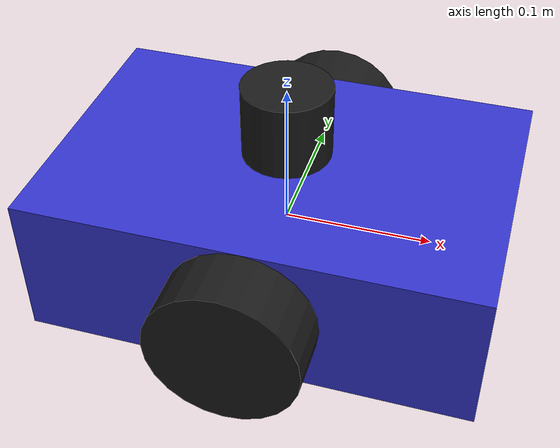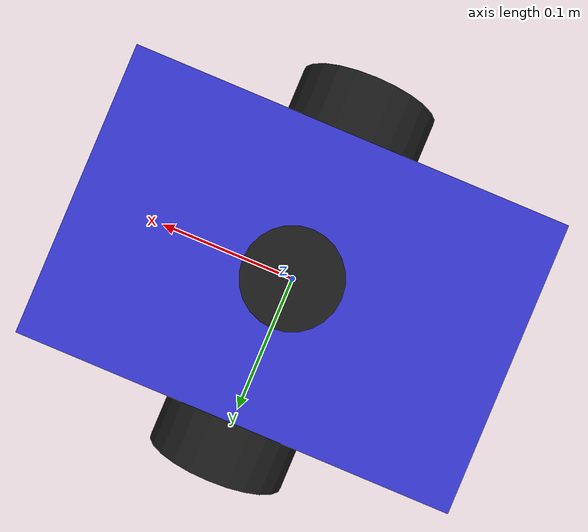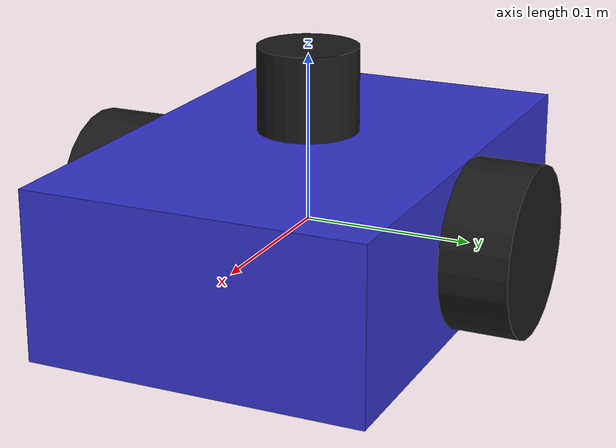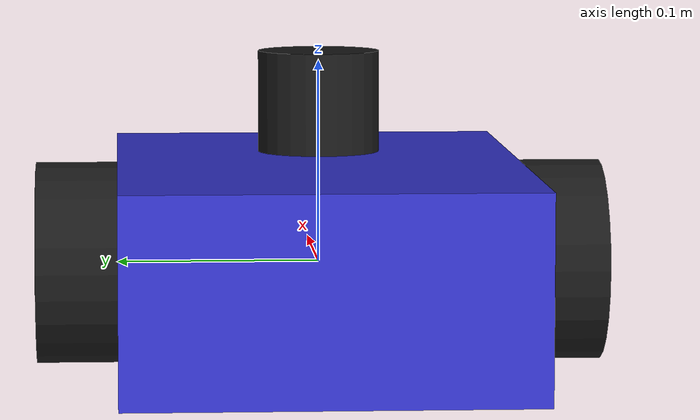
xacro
<?xml version="1.0"?>
<robot name="my_robot" xmlns:xacro="http://www.ros.org/wiki/xacro">

  <link name="base_link">
    <visual>
      <geometry>
        <box size="0.3 0.2 0.1"/>
      </geometry>
      <material name="blue">
        <color rgba="0.2 0.2 0.8 1"/>
      </material>
    </visual>
    <collision>
      <geometry>
        <box size="0.3 0.2 0.1"/>
      </geometry>
    </collision>
    <inertial>
      <mass value="1.0"/>
      <inertia ixx="0.01" ixy="0.0" ixz="0.0" iyy="0.01" iyz="0.0" izz="0.01"/>
    </inertial>
  </link>

  <link name="left_wheel">
    <visual>
      <geometry>
        <cylinder radius="0.05" length="0.04"/>
      </geometry>
      <material name="black">
        <color rgba="0.1 0.1 0.1 1"/>
      </material>
    </visual>
    <collision>
      <geometry>
        <cylinder radius="0.05" length="0.04"/>
      </geometry>
    </collision>
    <inertial>
      <mass value="0.1"/>
      <inertia ixx="0.0001" ixy="0.0" ixz="0.0" iyy="0.0001" iyz="0.0" izz="0.0001"/>
    </inertial>
  </link>

  <joint name="left_wheel_joint" type="continuous">
    <parent link="base_link"/>
    <child link="left_wheel"/>
    <origin xyz="0 0.12 0" rpy="1.5708 0 0"/>
    <axis xyz="0 0 1"/>
  </joint>

  <link name="right_wheel">
    <visual>
      <geometry>
        <cylinder radius="0.05" length="0.04"/>
      </geometry>
      <material name="black">
        <color rgba="0.1 0.1 0.1 1"/>
      </material>
    </visual>
    <collision>
      <geometry>
        <cylinder radius="0.05" length="0.04"/>
      </geometry>
    </collision>
    <inertial>
      <mass value="0.1"/>
      <inertia ixx="0.0001" ixy="0.0" ixz="0.0" iyy="0.0001" iyz="0.0" izz="0.0001"/>
    </inertial>
  </link>

  <joint name="right_wheel_joint" type="continuous">
    <parent link="base_link"/>
    <child link="right_wheel"/>
    <origin xyz="0 -0.12 0" rpy="1.5708 0 0"/>
    <axis xyz="0 0 1"/>
  </joint>

  <link name="lidar_link">
    <visual>
      <geometry>
        <cylinder radius="0.03" length="0.05"/>
      </geometry>
      <material name="black"/>
    </visual>
    <collision>
      <geometry>
        <cylinder radius="0.03" length="0.05"/>
      </geometry>
    </collision>
    <inertial>
      <mass value="0.05"/>
      <inertia ixx="0.00001" ixy="0.0" ixz="0.0" iyy="0.00001" iyz="0.0" izz="0.00001"/>
    </inertial>
  </link>

  <joint name="lidar_joint" type="fixed">
    <parent link="base_link"/>
    <child link="lidar_link"/>
    <origin xyz="0 0 0.08" rpy="0 0 0"/>
  </joint>

  <gazebo>
    <plugin filename="gz-sim-diff-drive-system" name="gz::sim::systems::DiffDrive">
      <left_joint>left_wheel_joint</left_joint>
      <right_joint>right_wheel_joint</right_joint>
      <wheel_separation>0.24</wheel_separation>
      <wheel_radius>0.05</wheel_radius>
      <topic>cmd_vel</topic>
    </plugin>
  </gazebo>

  <gazebo reference="lidar_link">
    <sensor name="lidar" type="gpu_lidar">
      <update_rate>10</update_rate>
      <topic>scan</topic>
      <lidar>
        <scan>
          <horizontal>
            <samples>360</samples>
            <resolution>1</resolution>
            <min_angle>-3.14159</min_angle>
            <max_angle>3.14159</max_angle>
          </horizontal>
        </scan>
        <range>
          <min>0.1</min>
          <max>10.0</max>
        </range>
      </lidar>
      <always_on>true</always_on>
      <visualize>true</visualize>
    </sensor>
  </gazebo>

</robot>
